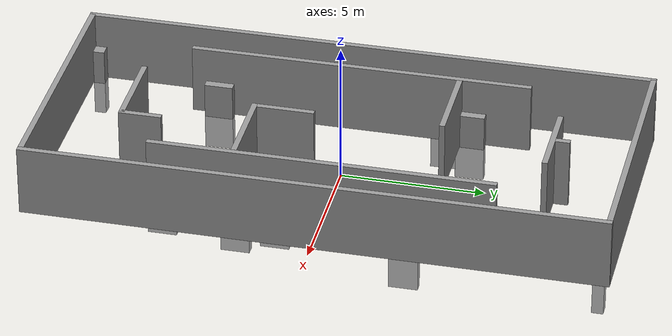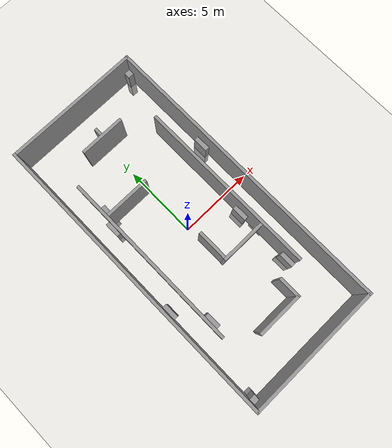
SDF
<sdf version="1.6">
 <world name="default">
  <light name="sun" type="directional">
   <pose>0 0 10 0 -0 0</pose>
   <diffuse>0.8 0.8 0.8 1</diffuse>
   <specular>0.1 0.1 0.1 1</specular>
   <attenuation>
    <range>1000</range>
    <constant>0.9</constant>
    <linear>0.01</linear>
    <quadratic>0.001</quadratic>
   </attenuation>
   <direction>-0.5 0.5 -1</direction>
  </light>
  <model name="ground_plane">
   <static>1</static>
   <link name="link">
    <collision name="collision">
     <geometry><plane><normal>0 0 1</normal><size>100 100</size></plane></geometry>
     <surface><friction><ode><mu>100</mu><mu2>50</mu2></ode></friction></surface>
    </collision>
    <visual name="visual">
     <cast_shadows>0</cast_shadows>
     <geometry><plane><normal>0 0 1</normal><size>100 100</size></plane></geometry>
     <material>
      <script><uri>file://media/materials/scripts/gazebo.material</uri><name>Gazebo/Grey</name></script>
     </material>
    </visual>
   </link>
  </model>
  <model name="Track">
   <static>1</static>
   <link name="Wall_1">
    <collision name="Wall_1_Collision">
     <geometry><box><size>20.2 0.2 2.5</size></box></geometry>
     <pose>0 0 1.25 0 -0 0</pose>
    </collision>
    <visual name="Wall_1_Visual">
     <pose>0 0 1.25 0 -0 0</pose>
     <geometry><box><size>20.2 0.2 2.5</size></box></geometry>
     <material>
      <script><uri>file://media/materials/scripts/gazebo.material</uri><name>Gazebo/Grey</name></script>
     </material>
    </visual>
    <velocity_decay><linear>0</linear><angular>0</angular></velocity_decay>
    <pose>4.5 0 0 0 0 -1.5708</pose>
   </link>
   <link name="Wall_2">
    <collision name="Wall_2_Collision">
     <geometry><box><size>9 0.2 2.5</size></box></geometry>
     <pose>0 0 1.25 0 -0 0</pose>
    </collision>
    <visual name="Wall_3_Visual">
     <pose>0 0 1.25 0 -0 0</pose>
     <geometry><box><size>9 0.2 2.5</size></box></geometry>
     <material>
      <script><uri>file://media/materials/scripts/gazebo.material</uri><name>Gazebo/Grey</name></script>
     </material>
    </visual>
    <velocity_decay><linear>0</linear><angular>0</angular></velocity_decay>
    <pose>0 -10 0 0 -0 0</pose>
   </link>
   <link name="Wall_3">
    <collision name="Wall_3_Collision">
     <geometry><box><size>20.2 0.2 2.5</size></box></geometry>
     <pose>0 0 1.25 0 -0 0</pose>
    </collision>
    <visual name="Wall_3_Visual">
     <pose>0 0 1.25 0 -0 0</pose>
     <geometry><box><size>20.2 0.2 2.5</size></box></geometry>
     <material>
      <script><uri>file://media/materials/scripts/gazebo.material</uri><name>Gazebo/Grey</name></script>
     </material>
    </visual>
    <velocity_decay><linear>0</linear><angular>0</angular></velocity_decay>
    <pose>-4.5 0 0 0 -0 1.5708</pose>
   </link>
   <link name="Wall_4">
    <collision name="Wall_4_Collision">
     <geometry><box><size>9 0.2 2.5</size></box></geometry>
     <pose>0 0 1.25 0 -0 0</pose>
    </collision>
    <visual name="Wall_4_Visual">
     <pose>0 0 1.25 0 -0 0</pose>
     <geometry><box><size>9 0.2 2.5</size></box></geometry>
     <material>
      <script><uri>file://media/materials/scripts/gazebo.material</uri><name>Gazebo/Grey</name></script>
     </material>
    </visual>
    <velocity_decay><linear>0</linear><angular>0</angular></velocity_decay>
    <pose>0 10 0 0 -0 0</pose>
   </link>
   <link name="Wall_5">
    <collision name="Wall_5_Collision">
     <geometry><box><size>12 0.2 2.5</size></box></geometry>
     <pose>0 0 1.25 0 -0 0</pose>
    </collision>
    <visual name="Wall_5_Visual">
     <pose>0 0 1.25 0 -0 0</pose>
     <geometry><box><size>12 0.2 2.5</size></box></geometry>
     <material>
      <script><uri>file://media/materials/scripts/gazebo.material</uri><name>Gazebo/Grey</name></script>
     </material>
    </visual>
    <velocity_decay><linear>0</linear><angular>0</angular></velocity_decay>
    <pose>-3.1 0 0 0 -0 1.5708</pose>
   </link>
   <link name="Wall_6">
    <collision name="Wall_6_Collision">
     <geometry><box><size>12 0.2 2.5</size></box></geometry>
     <pose>0 0 1.25 0 -0 0</pose>
    </collision>
    <visual name="Wall_5_Visual">
     <pose>0 0 1.25 0 -0 0</pose>
     <geometry><box><size>12 0.2 2.5</size></box></geometry>
     <material>
      <script><uri>file://media/materials/scripts/gazebo.material</uri><name>Gazebo/Grey</name></script>
     </material>
    </visual>
    <velocity_decay><linear>0</linear><angular>0</angular></velocity_decay>
    <pose>3.1 0 0 0 -0 1.5708</pose>
   </link>
   <link name="Wall_7">
    <collision name="Wall_7_Collision">
     <geometry><box><size>3 0.2 2.5</size></box></geometry>
     <pose>0 0 1.25 0 -0 0</pose>
    </collision>
    <visual name="Wall_7_Visual">
     <pose>0 0 1.25 0 -0 0</pose>
     <geometry><box><size>3 0.2 2.5</size></box></geometry>
     <material>
      <script><uri>file://media/materials/scripts/gazebo.material</uri><name>Gazebo/Grey</name></script>
     </material>
    </visual>
    <velocity_decay><linear>0</linear><angular>0</angular></velocity_decay>
    <pose>0 7.3 0 0 -0 0</pose>
   </link>
   <link name="Wall_8">
    <collision name="Wall_8_Collision">
     <geometry><box><size>3 0.2 2.5</size></box></geometry>
     <pose>0 0 1.25 0 -0 0</pose>
    </collision>
    <visual name="Wall_8_Visual">
     <pose>0 0 1.25 0 -0 0</pose>
     <geometry><box><size>3 0.2 2.5</size></box></geometry>
     <material>
      <script><uri>file://media/materials/scripts/gazebo.material</uri><name>Gazebo/Grey</name></script>
     </material>
    </visual>
    <velocity_decay><linear>0</linear><angular>0</angular></velocity_decay>
    <pose>0 -7.3 0 0 -0 0</pose>
   </link>
   <link name="Wall_9">
    <collision name="Wall_9_Collision">
     <geometry><box><size>3 0.2 2.5</size></box></geometry>
     <pose>0 0 1.25 0 -0 0</pose>
    </collision>
    <visual name="Wall_9_Visual">
     <pose>0 0 1.25 0 -0 0</pose>
     <geometry><box><size>3 0.2 2.5</size></box></geometry>
     <material>
      <script><uri>file://media/materials/scripts/gazebo.material</uri><name>Gazebo/Grey</name></script>
     </material>
    </visual>
    <velocity_decay><linear>0</linear><angular>0</angular></velocity_decay>
    <pose>1.5 -3 0 0 -0 0</pose>
   </link>
   <link name="Wall_10">
    <collision name="Wall_10_Collision">
     <geometry><box><size>3 0.2 2.5</size></box></geometry>
     <pose>0 0 1.25 0 -0 0</pose>
    </collision>
    <visual name="Wall_10_Visual">
     <pose>0 0 1.25 0 -0 0</pose>
     <geometry><box><size>3 0.2 2.5</size></box></geometry>
     <material>
      <script><uri>file://media/materials/scripts/gazebo.material</uri><name>Gazebo/Grey</name></script>
     </material>
    </visual>
    <velocity_decay><linear>0</linear><angular>0</angular></velocity_decay>
    <pose>-1.5 3.5 0 0 -0 0</pose>
   </link>
   <link name="Wall_11">
    <collision name="Wall_11_Collision">
     <geometry><box><size>0.5 0.2 2.5</size></box></geometry>
     <pose>0 0 1.25 0 -0 0</pose>
    </collision>
    <visual name="Wall_11_Visual">
     <pose>0 0 1.25 0 -0 0</pose>
     <geometry><box><size>0.5 0.2 2.5</size></box></geometry>
     <material>
      <script><uri>file://media/materials/scripts/gazebo.material</uri><name>Gazebo/Grey</name></script>
     </material>
    </visual>
    <velocity_decay><linear>0</linear><angular>0</angular></velocity_decay>
    <pose>0 7.65 0 0 -0 1.5708</pose>
   </link>
   <link name="Wall_12">
    <collision name="Wall_12_Collision">
     <geometry><box><size>2 0.2 2.5</size></box></geometry>
     <pose>0 0 1.25 0 -0 0</pose>
    </collision>
    <visual name="Wall_12_Visual">
     <pose>0 0 1.25 0 -0 0</pose>
     <geometry><box><size>2 0.2 2.5</size></box></geometry>
     <material>
      <script><uri>file://media/materials/scripts/gazebo.material</uri><name>Gazebo/Grey</name></script>
     </material>
    </visual>
    <velocity_decay><linear>0</linear><angular>0</angular></velocity_decay>
    <pose>0.1 -1.9 0 0 -0 1.5708</pose>
   </link>
   <link name="Wall_13">
    <collision name="Wall_13_Collision">
     <geometry><box><size>1.5 0.2 2.5</size></box></geometry>
     <pose>0 0 1.25 0 -0 0</pose>
    </collision>
    <visual name="Wall_13_Visual">
     <pose>0 0 1.25 0 -0 0</pose>
     <geometry><box><size>1.5 0.2 2.5</size></box></geometry>
     <material>
      <script><uri>file://media/materials/scripts/gazebo.material</uri><name>Gazebo/Grey</name></script>
     </material>
    </visual>
    <velocity_decay><linear>0</linear><angular>0</angular></velocity_decay>
    <pose>1.5 -6.65 0 0 -0 1.5708</pose>
   </link>
  </model>
  <model name="unit_box_0">
   <static>1</static>
   <pose>-2.85 -5 0 0 -0 0</pose>
   <link name="link">
    <collision name="collision"><geometry><box><size>0.3 1 2.5</size></box></geometry></collision>
    <visual name="visual">
     <geometry><box><size>0.3 1 2.5</size></box></geometry>
     <material>
      <script><name>Gazebo/Grey</name><uri>file://media/materials/scripts/gazebo.material</uri></script>
     </material>
    </visual>
   </link>
  </model>
  <model name="unit_box_1">
   <static>1</static>
   <pose>-4.25 -2.92005 0 0 -0 0</pose>
   <link name="link">
    <collision name="collision"><geometry><box><size>0.3 1 2.5</size></box></geometry></collision>
    <visual name="visual">
     <geometry><box><size>0.3 1 2.5</size></box></geometry>
     <material>
      <script><name>Gazebo/Grey</name><uri>file://media/materials/scripts/gazebo.material</uri></script>
     </material>
    </visual>
   </link>
  </model>
  <model name="unit_box_2">
   <static>1</static>
   <pose>-2.85 3.95 0 0 -0 0</pose>
   <link name="link">
    <collision name="collision"><geometry><box><size>0.3 1 2.5</size></box></geometry></collision>
    <visual name="visual">
     <geometry><box><size>0.3 1 2.5</size></box></geometry>
     <material>
      <script><name>Gazebo/Grey</name><uri>file://media/materials/scripts/gazebo.material</uri></script>
     </material>
    </visual>
   </link>
  </model>
  <model name="unit_box_5">
   <static>1</static>
   <pose>2.85 -5.55 0 0 -0 0</pose>
   <link name="link">
    <collision name="collision"><geometry><box><size>0.3 1 2.5</size></box></geometry></collision>
    <visual name="visual">
     <geometry><box><size>0.3 1 2.5</size></box></geometry>
     <material>
      <script><name>Gazebo/Grey</name><uri>file://media/materials/scripts/gazebo.material</uri></script>
     </material>
    </visual>
   </link>
  </model>
  <model name="unit_box_6">
   <static>1</static>
   <pose>2.85 -1.6215 0 0 -0 0</pose>
   <link name="link">
    <collision name="collision"><geometry><box><size>0.3 1 2.5</size></box></geometry></collision>
    <visual name="visual">
     <geometry><box><size>0.3 1 2.5</size></box></geometry>
     <material>
      <script><name>Gazebo/Grey</name><uri>file://media/materials/scripts/gazebo.material</uri></script>
     </material>
    </visual>
   </link>
  </model>
  <model name="unit_box_7">
   <static>1</static>
   <pose>4.25 3.12274 0 0 -0 0</pose>
   <link name="link">
    <collision name="collision"><geometry><box><size>0.3 1 2.5</size></box></geometry></collision>
    <visual name="visual">
     <geometry><box><size>0.3 1 2.5</size></box></geometry>
     <material>
      <script><name>Gazebo/Grey</name><uri>file://media/materials/scripts/gazebo.material</uri></script>
     </material>
    </visual>
   </link>
  </model>
  <model name="unit_box_8">
   <static>1</static>
   <pose>4.2 9.7 0 0 -0 0</pose>
   <link name="link">
    <collision name="collision"><geometry><box><size>0.4 0.4 2.5</size></box></geometry></collision>
    <visual name="visual">
     <geometry><box><size>0.4 0.4 2.5</size></box></geometry>
     <material>
      <script><name>Gazebo/Grey</name><uri>file://media/materials/scripts/gazebo.material</uri></script>
     </material>
    </visual>
   </link>
  </model>
  <model name="unit_box_9">
   <static>1</static>
   <pose>-4.2 -9.7 0 0 -0 0</pose>
   <link name="link">
    <collision name="collision"><geometry><box><size>0.4 0.4 2.5</size></box></geometry></collision>
    <visual name="visual">
     <geometry><box><size>0.4 0.4 2.5</size></box></geometry>
     <material>
      <script><name>Gazebo/Grey</name><uri>file://media/materials/scripts/gazebo.material</uri></script>
     </material>
    </visual>
   </link>
  </model>
  <model name="unit_box_6">
   <static>1</static>
   <pose>2.85 -1.6215 0 0 -0 0</pose>
   <link name="link">
    <collision name="collision"><geometry><box><size>0.3 1 2.5</size></box></geometry></collision>
    <visual name="visual">
     <geometry><box><size>0.3 1 2.5</size></box></geometry>
     <material>
      <script><name>Gazebo/Grey</name><uri>file://media/materials/scripts/gazebo.material</uri></script>
     </material>
    </visual>
   </link>
  </model>
  <gravity>0 0 -9.8</gravity>
  <magnetic_field>6e-06 2.3e-05 -4.2e-05</magnetic_field>
  <atmosphere type="adiabatic"/>
  <physics name="default_physics" default="0" type="ode">
   <max_step_size>0.001</max_step_size>
   <real_time_factor>1</real_time_factor>
   <real_time_update_rate>1000</real_time_update_rate>
  </physics>
  <scene><ambient>0.4 0.4 0.4 1</ambient><background>0.7 0.7 0.7 1</background><shadows>1</shadows></scene>
  <spherical_coordinates>
   <surface_model>EARTH_WGS84</surface_model>
   <latitude_deg>0</latitude_deg>
   <longitude_deg>0</longitude_deg>
   <elevation>0</elevation>
   <heading_deg>0</heading_deg>
  </spherical_coordinates>
  <model name="unit_box_7_clone">
   <static>1</static>
   <pose>3.35291 -2.87817 0 0 -0 0</pose>
   <link name="link">
    <collision name="collision"><geometry><box><size>0.3 1 2.5</size></box></geometry></collision>
    <visual name="visual">
     <geometry><box><size>0.3 1 2.5</size></box></geometry>
     <material>
      <script><name>Gazebo/Grey</name><uri>file://media/materials/scripts/gazebo.material</uri></script>
     </material>
    </visual>
   </link>
  </model>
  <model name="unit_box_7_clone_0">
   <static>1</static>
   <pose>-3.31457 2.98531 0 0 -0 0</pose>
   <link name="link">
    <collision name="collision"><geometry><box><size>0.3 1 2.5</size></box></geometry></collision>
    <visual name="visual">
     <geometry><box><size>0.3 1 2.5</size></box></geometry>
     <material>
      <script><name>Gazebo/Grey</name><uri>file://media/materials/scripts/gazebo.material</uri></script>
     </material>
    </visual>
   </link>
  </model>
 </world>
</sdf>
